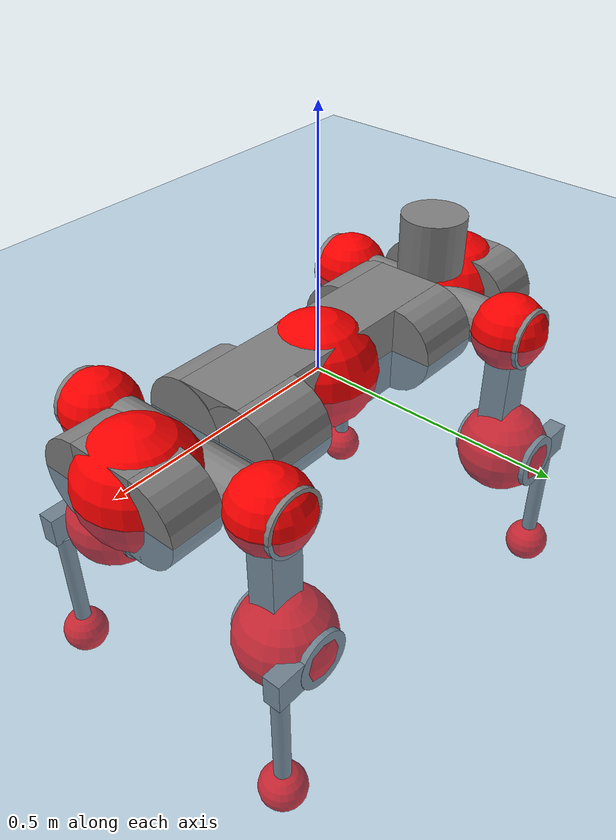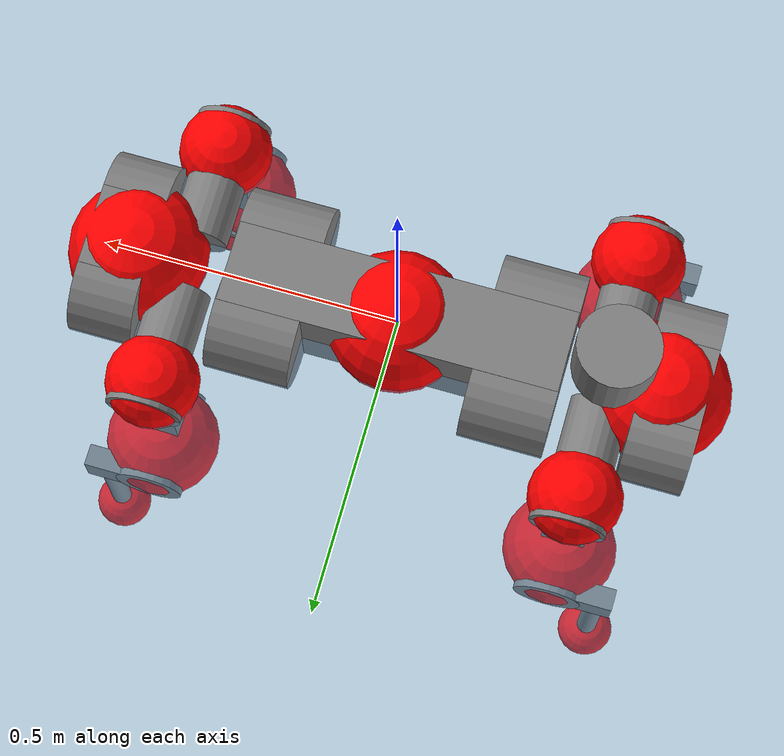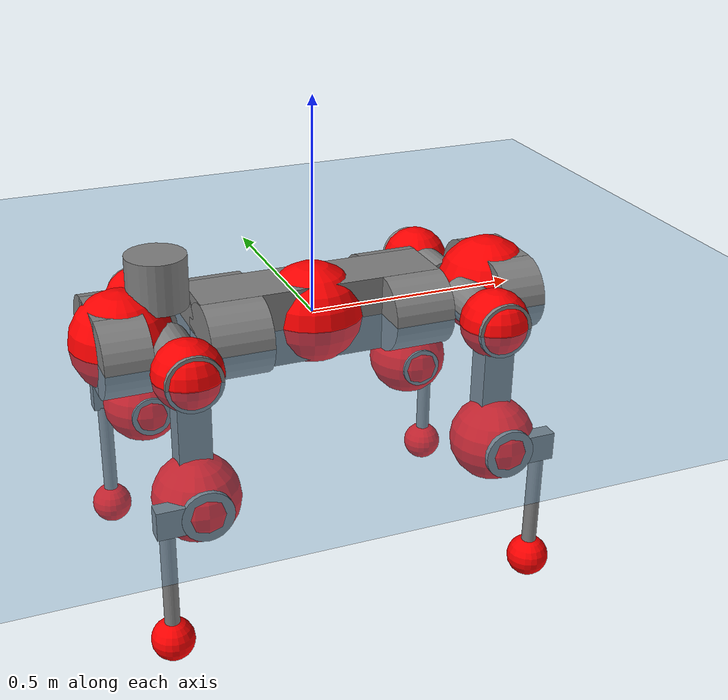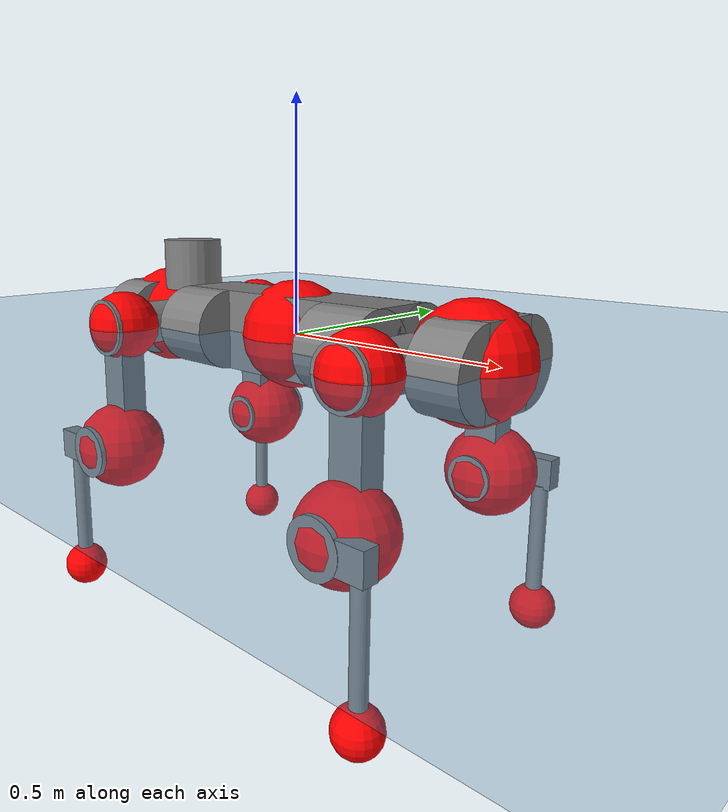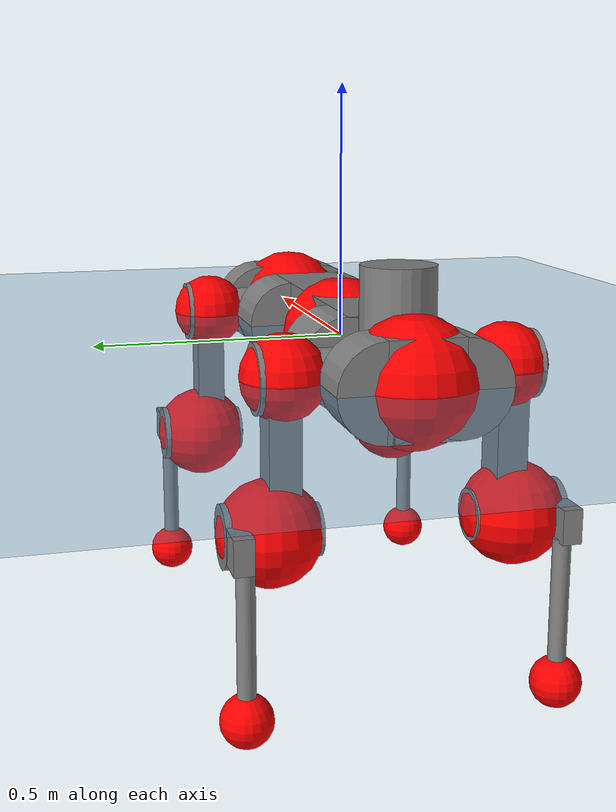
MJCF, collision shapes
<mujoco model="anymal_c">
  <compiler angle="radian" assetdir="assets" balanceinertia="true" inertiafromgeom="false"/>

  <option timestep="0.005" density="1.2" viscosity="2e-05"/>

  <size nkey="1"/>

  <visual>
    <quality shadowsize="8192"/>
    <map shadowclip="0.5"/>
  </visual>

  <default>
    <default class="/">
      <material specular="0" shininess="0.25"/>
      <geom contype="0" conaffinity="0" group="1" solref="-1000 -80"/>
      <site size="0.01 0.005 0.005" group="5"/>
      <general forcelimited="true" forcerange="-80 80" biastype="affine" gainprm="80" biasprm="0 -80 -2"/>
      <default class="anymal_c">
        <joint armature="0.01" damping="0.01" frictionloss="0.1"/>
        <default class="visual">
          <geom type="mesh" group="2"/>
          <default class="visual_zflip"/>
        </default>
        <default class="collision">
          <geom type="cylinder" group="3"/>
          <default class="foot">
            <geom size="0.03 0 0" type="sphere" condim="6" priority="1" friction="0.8 0.02 0.01" solimp="0.015 1 0.03"/>
          </default>
        </default>
      </default>
      <default class="reward_collision_sphere">
        <geom group="5" rgba="1 0 0 1"/>
      </default>
    </default>
  </default>

  <asset>
    <texture type="skybox" colorspace="auto" name="//unnamed_texture_0" builtin="gradient" rgb1="0.95 0.95 0.95" rgb2="0.95 0.95 0.95" width="100" height="600"/>
    <texture type="2d" colorspace="auto" name="texplane" builtin="checker" rgb1="0.345 0.575 0.748" rgb2="0.345 0.575 0.748" markrgb="1 1 1" width="512" height="512"/>
    <texture type="2d" colorspace="linear" name="base" file="base.png"/>
    <texture type="2d" colorspace="linear" name="top_shell" file="top_shell.png"/>
    <texture type="2d" colorspace="linear" name="bottom_shell" file="bottom_shell.png"/>
    <texture type="2d" colorspace="linear" name="remote" file="remote.png"/>
    <texture type="2d" colorspace="linear" name="hatch" file="hatch.png"/>
    <texture type="2d" colorspace="linear" name="handle" file="handle.png"/>
    <texture type="2d" colorspace="linear" name="face" file="face.png"/>
    <texture type="2d" colorspace="linear" name="battery" file="battery.png"/>
    <texture type="2d" colorspace="linear" name="lidar_cage" file="lidar_cage.png"/>
    <texture type="2d" colorspace="linear" name="depth_camera" file="depth_camera.png"/>
    <texture type="2d" colorspace="linear" name="wide_angle_camera" file="wide_angle_camera.png"/>
    <texture type="2d" colorspace="linear" name="lidar" file="lidar.png"/>
    <texture type="2d" colorspace="linear" name="drive" file="drive.png"/>
    <texture type="2d" colorspace="linear" name="hip_l" file="hip_l.png"/>
    <texture type="2d" colorspace="linear" name="shank_l" file="shank_l.png"/>
    <texture type="2d" colorspace="linear" name="foot" file="foot.png"/>
    <texture type="2d" colorspace="linear" name="thigh" file="thigh.png"/>
    <texture type="2d" colorspace="linear" name="shank_r" file="shank_r.png"/>
    <texture type="2d" colorspace="linear" name="hip_r" file="hip_r.png"/>
    <material name="MatPlane" class="/" texture="texplane" texuniform="true" texrepeat="2 2" specular="0.9" shininess="0.5"/>
    <material name="black_plastic" class="/" rgba="0.007 0.007 0.007 1"/>
    <material name="green" class="/" rgba="0.052 0.178 0.033 1"/>
    <material name="red" class="/" rgba="0.178 0.006 0.005 1"/>
    <material name="yellow" class="/" rgba="0.178 0.119 0.006 1"/>
    <material name="lwl" class="/" rgba="0.8 0.8 0.8 1"/>
    <material name="base" class="/" texture="base"/>
    <material name="top_shell" class="/" texture="top_shell"/>
    <material name="bottom_shell" class="/" texture="bottom_shell"/>
    <material name="hip_l" class="/" texture="hip_l"/>
    <material name="thigh" class="/" texture="thigh"/>
    <material name="shank_l" class="/" texture="shank_l"/>
    <material name="foot" class="/" texture="foot"/>
    <material name="hip_r" class="/" texture="hip_r"/>
    <material name="shank" class="/" texture="shank_r"/>
    <material name="hatch" class="/" texture="hatch"/>
    <material name="remote" class="/" texture="remote"/>
    <material name="handle" class="/" texture="handle"/>
    <material name="face" class="/" texture="face"/>
    <material name="depth_camera" class="/" texture="depth_camera"/>
    <material name="wide_angle_camera" class="/" texture="wide_angle_camera"/>
    <material name="battery" class="/" texture="battery"/>
    <material name="lidar_cage" class="/" texture="lidar_cage"/>
    <material name="lidar" class="/" texture="lidar"/>
    <material name="drive" class="/" texture="drive"/>
    <mesh name="base_0" class="/" file="base_0.obj"/>
    <mesh name="base_1" class="/" file="base_1.obj"/>
    <mesh name="base_2" class="/" file="base_2.obj"/>
    <mesh name="base_3" class="/" file="base_3.obj"/>
    <mesh name="base_4" class="/" file="base_4.obj"/>
    <mesh name="base_5" class="/" file="base_5.obj"/>
    <mesh name="top_shell" class="/" file="top_shell.obj"/>
    <mesh name="bottom_shell" class="/" file="bottom_shell.obj"/>
    <mesh name="remote" class="/" file="remote.obj"/>
    <mesh name="handle" class="/" file="handle.obj"/>
    <mesh name="face" class="/" file="face.obj"/>
    <mesh name="wide_angle_camera" class="/" file="wide_angle_camera.obj"/>
    <mesh name="depth_camera" class="/" file="depth_camera.obj"/>
    <mesh name="battery" class="/" file="battery.obj"/>
    <mesh name="lidar_cage" class="/" file="lidar_cage.obj"/>
    <mesh name="lidar" class="/" file="lidar.obj"/>
    <mesh name="drive" class="/" file="drive.obj"/>
    <mesh name="hip_l" class="/" file="hip_l.obj"/>
    <mesh name="thigh" class="/" file="thigh.obj"/>
    <mesh name="shank_l" class="/" file="shank_l.obj"/>
    <mesh name="foot" class="/" file="foot.obj"/>
    <mesh name="hip_r" class="/" file="hip_r.obj"/>
    <mesh name="hatch" class="/" file="hatch.obj"/>
    <mesh name="shank_r" class="/" file="shank_r.obj"/>
  </asset>

  <worldbody>
    <geom name="floor" class="/" size="100 100 0.125" type="plane" group="0" material="MatPlane"/>
    <light name="toplight_shadow" class="/" pos="0 0 5" dir="0.0990148 0.0990148 -0.990148" type="directional" ambient="0.04 0.04 0.04" diffuse="0.55 0.55 0.55" specular="0.12 0.12 0.12"/>
    <light name="toplight_fill" class="/" pos="0 0 5" dir="0.0990148 0.0990148 -0.990148" type="directional" castshadow="false" ambient="0.04 0.04 0.04" diffuse="0.3 0.3 0.3" specular="0.08 0.08 0.08"/>
    <body name="trunk" childclass="anymal_c" pos="0.000263677 0.000152022 0.00038303" quat="1 -0.000172613 -0.00013331 -2.80353e-05">
      <inertial pos="0.00211909 -0.000949589 0.0478273" quat="0.500057 0.501461 0.499003 0.499475" mass="17.3566" diaginertia="0.582041 0.52388 0.196861"/>
      <joint name="//unnamed_joint_0" type="free" armature="0" damping="0" frictionloss="0"/>
      <geom name="//unnamed_geom_1" class="visual" material="green" mesh="base_0"/>
      <geom name="//unnamed_geom_2" class="visual" material="yellow" mesh="base_1"/>
      <geom name="//unnamed_geom_3" class="visual" material="red" mesh="base_2"/>
      <geom name="//unnamed_geom_4" class="visual" material="black_plastic" mesh="base_3"/>
      <geom name="//unnamed_geom_5" class="visual" material="lwl" mesh="base_4"/>
      <geom name="//unnamed_geom_6" class="visual" material="base" mesh="base_5"/>
      <geom name="trunk_1" class="collision" size="0.283795 0.0685022 0.0880742" type="box"/>
      <geom name="trunk_2" class="collision" size="0.0880742 0.0709487" pos="0.21418 0.0677322 0" quat="0.707107 0 0.707107 0"/>
      <geom name="trunk_3" class="collision" size="0.0880742 0.0709487" pos="-0.21418 0.0677322 0" quat="0.707107 0 0.707107 0"/>
      <geom name="trunk_4" class="collision" size="0.0880742 0.0709487" pos="0.21418 -0.0677322 0" quat="0.707107 0 0.707107 0"/>
      <geom name="trunk_5" class="collision" size="0.0880742 0.0709487" pos="-0.21418 -0.0677322 0" quat="0.707107 0 0.707107 0"/>
      <geom name="//unnamed_geom_12" class="visual" material="top_shell" mesh="top_shell"/>
      <geom name="//unnamed_geom_13" class="visual" material="bottom_shell" mesh="bottom_shell"/>
      <geom name="//unnamed_geom_14" class="visual" material="remote" mesh="remote"/>
      <geom name="//unnamed_geom_15" class="visual" material="handle" mesh="handle"/>
      <geom name="//unnamed_geom_16" class="visual" pos="0.408174 0 0" quat="1 0 0 0" material="face" mesh="face"/>
      <geom name="trunk_6" class="collision" size="0.0538231 0.0685022 0.0880742" pos="0.462334 0 0" type="box"/>
      <geom name="//unnamed_geom_18" class="collision" size="0.0880742 0.0538231" pos="0.462334 0.0677322 0" quat="0.707107 0 0.707107 0"/>
      <geom name="//unnamed_geom_19" class="collision" size="0.0880742 0.0538231" pos="0.462334 -0.0677322 0" quat="0.707107 0 0.707107 0"/>
      <geom name="//unnamed_geom_20" class="visual" pos="0.454604 0 -0.0287076" quat="0.965926 0 0.258819 0" material="depth_camera" mesh="depth_camera"/>
      <geom name="//unnamed_geom_21" class="visual" pos="0.50517 0 0.0147225" material="wide_angle_camera" mesh="wide_angle_camera"/>
      <geom name="//unnamed_geom_22" class="visual_zflip" pos="-0.408174 0 0" quat="0 0 0 1" material="face" mesh="face"/>
      <geom name="trunk_7" class="collision" size="0.0538231 0.0685022 0.0880742" pos="-0.462334 0 0" quat="0 0 0 1" type="box"/>
      <geom name="//unnamed_geom_24" class="collision" size="0.0880742 0.0538231" pos="-0.462334 -0.0677322 0" quat="0 -0.707107 0 0.707107"/>
      <geom name="//unnamed_geom_25" class="collision" size="0.0880742 0.0538231" pos="-0.462334 0.0677322 0" quat="0 -0.707107 0 0.707107"/>
      <geom name="//unnamed_geom_26" class="visual" pos="-0.454604 0 -0.0287076" quat="0 -0.258819 0 0.965926" material="depth_camera" mesh="depth_camera"/>
      <geom name="//unnamed_geom_27" class="visual_zflip" pos="-0.50517 0 0.0147225" quat="0 0 0 1" material="wide_angle_camera" mesh="wide_angle_camera"/>
      <geom name="//unnamed_geom_28" class="visual" material="battery" mesh="battery"/>
      <geom name="//unnamed_geom_29" class="visual" pos="0 0.073758 0.0285794" quat="0.683013 -0.183013 0.183013 0.683013" material="depth_camera" mesh="depth_camera"/>
      <geom name="//unnamed_geom_30" class="visual" pos="0 -0.073758 0.0285794" quat="0.683013 0.183013 0.183013 -0.683013" material="depth_camera" mesh="depth_camera"/>
      <geom name="//unnamed_geom_31" class="visual" pos="-0.358444 0 0.0722849" quat="1 0 0 0" material="lidar_cage" mesh="lidar_cage"/>
      <geom name="trunk_8" class="collision" size="0.0685022 0.0587161" pos="-0.358444 0 0.131293"/>
      <geom name="//unnamed_geom_33" class="visual" pos="-0.358444 -6.73191e-06 0.139849" quat="0.707107 0 0 -0.707107" material="lidar" mesh="lidar"/>
      <geom name="//unnamed_geom_34" class="visual" pos="0.295323 0.100636 -2.73675e-10" quat="0.258819 0.965926 0 0" material="drive" mesh="drive"/>
      <geom name="//unnamed_geom_35" class="visual" pos="0.295323 -0.100636 2.73675e-10" quat="0.258819 -0.965926 0 0" material="drive" mesh="drive"/>
      <geom name="//unnamed_geom_36" class="visual" pos="-0.295323 0.100636 2.73675e-10" quat="0 0 0.965926 -0.258819" material="drive" mesh="drive"/>
      <geom name="//unnamed_geom_37" class="visual" pos="-0.295323 -0.100636 -2.73675e-10" quat="0 0 -0.965926 -0.258819" material="drive" mesh="drive"/>
      <geom name="//unnamed_geom_38" class="visual" pos="0.11423 0 0.0717931" quat="1 0 0 0" material="hatch" mesh="hatch"/>
      <geom name="//unnamed_geom_39" class="reward_collision_sphere" size="0.117432"/>
      <geom name="//unnamed_geom_40" class="reward_collision_sphere" size="0.117432" pos="0.443132 0 0"/>
      <geom name="//unnamed_geom_41" class="reward_collision_sphere" size="0.117432" pos="-0.443132 0 0"/>
      <site name="imu" pos="0.237007 0.0054442 0.0493248" size="0.00978602"/>
      <camera name="track" pos="0 -1.9352 0" quat="0.707107 0.707107 0 0" mode="trackcom"/>
      <camera name="ego_camera" pos="0.443132 0 -0.0393387" quat="-0.5 -0.5 0.5 0.5"/>
      <body name="LF_HIP" pos="0.296154 0.100611 0.000375475" quat="0.258617 0.96598 -0.000550343 0.000168685">
        <inertial pos="0.0567289 -0.0135619 -0.00816128" quat="-0.126077 0.708649 -0.132724 0.681399" mass="2.582" diaginertia="0.00536383 0.00418574 0.00301683"/>
        <joint name="LF_HAA" pos="0 0 0" axis="0.999997 -0.00174396 0.00170446" stiffness="0.00101242" range="-0.720331 0.47127" armature="0.0104415" damping="0.00212035" frictionloss="0.0958577"/>
        <geom name="//unnamed_geom_42" class="visual" pos="0 -1.60991e-05 2.64426e-06" quat="0.258819 -0.965926 0 0" material="hip_l" mesh="hip_l"/>
        <geom name="//unnamed_geom_43" class="visual" pos="0.0589858 -0.0712538 -0.0412558" quat="0.183013 -0.683013 0.683013 0.183013" material="drive" mesh="drive"/>
        <geom name="//unnamed_geom_44" class="collision" size="0.0489301 0.0685022" pos="0.0589858 -0.0115723 -0.00679084" quat="-0.353553 -0.612372 0.612372 -0.353553"/>
        <body name="LF_THIGH" pos="0.0591133 -0.070158 -0.041444" quat="0.182898 -0.682811 0.683176 0.183272">
          <inertial pos="0.0295364 0.000145439 -0.240621" quat="0.99327 -0.00436015 -0.080113 0.0835323" mass="2.84755" diaginertia="0.0276261 0.025328 0.00382407"/>
          <joint name="LF_HFE" pos="0 0 0" axis="0.999979 -0.00335022 0.00548314" range="-3.13809 3.1461" armature="0.010011" damping="0.0119685" frictionloss="0.0942106"/>
          <geom name="//unnamed_geom_45" class="visual" pos="0.00034092 5.37211e-07 0" quat="0.707107 0 0 -0.707107" material="thigh" mesh="thigh"/>
          <geom name="//unnamed_geom_46" class="collision" size="0.0636091 0.0391441" pos="0.0393895 0 0" quat="0.5 0.5 -0.5 -0.5"/>
          <geom name="//unnamed_geom_47" class="collision" size="0.0366976 0.0293581 0.13829" pos="0.0295421 0 -0.138978" quat="0.707107 0 0 -0.707107" type="box"/>
          <geom name="//unnamed_geom_48" class="visual" pos="0.0987692 0 -0.280288" quat="1 0 0 0" material="drive" mesh="drive"/>
          <geom name="//unnamed_geom_49" class="collision" size="0.0489301 0.0685022" pos="0.0298375 0 -0.280288" quat="0.707107 0 0.707107 0"/>
          <geom name="//unnamed_geom_50" class="reward_collision_sphere" size="0.0782882" pos="0.0246184 0 0"/>
          <body name="LF_SHANK" pos="0.0987666 -0.000629449 -0.281779" quat="1 5.16039e-05 -0.000121914 -0.000132065">
            <inertial pos="0.00516523 -0.0592283 -0.0794313" quat="0.992907 -0.116212 -0.000841502 -0.0251135" mass="0.559701" diaginertia="0.00951511 0.00782814 0.00103887"/>
            <joint name="LF_KFE" pos="0 0 0" axis="1 0.000233214 0.000137454" range="-3.13093 3.12432" armature="0.00929111" damping="0.00400016" frictionloss="0.094616"/>
            <geom name="//unnamed_geom_51" class="visual" pos="0.000111167 0.000592747 0" quat="0.707107 0 0 -0.707107" material="shank_l" mesh="shank_l"/>
            <geom name="LF_kfe_act" class="collision" size="0.0587161 0.019572" pos="0.0196947 0 0" quat="0.5 0.5 -0.5 -0.5"/>
            <geom name="//unnamed_geom_53" class="collision" size="0.0562687 0.0330278 0.0185934" pos="0.0196947 -0.0556362 0" quat="0.5 0.5 -0.5 -0.5" type="box"/>
            <geom name="//unnamed_geom_54" class="visual" pos="0.0128508 -0.0849096 -0.332382" quat="0.382683 0 0 -0.92388" material="foot" mesh="foot"/>
            <geom name="LF_calf" class="collision" size="0.0171255 0.13823" pos="0.0128508 -0.0851006 -0.166191" quat="0.707107 0 0 -0.707107"/>
            <geom name="LF_foot" class="foot" size="0.0323145" pos="0.0128508 -0.0851006 -0.310254" quat="0.707107 0 0 -0.707107"/>
            <geom name="//unnamed_geom_57" class="reward_collision_sphere" size="0.0978602" pos="-0.0492369 0 0"/>
            <geom name="//unnamed_geom_58" class="reward_collision_sphere" size="0.0489301" pos="0.0128508 -0.0851006 -0.310254"/>
            <site name="LF_foot" class="foot" pos="0.0128508 -0.0851006 -0.310254" quat="0.707107 0 0 -0.707107" size="0.00978602"/>
          </body>
        </body>
      </body>
      <body name="RF_HIP" pos="0.296553 -0.100856 0.00121538" quat="0.258814 -0.965927 4.58032e-05 4.32698e-05">
        <inertial pos="0.0566341 0.0147172 -0.00800702" quat="0.135151 0.678877 0.128046 0.710256" mass="2.58472" diaginertia="0.00544122 0.0040916 0.00300193"/>
        <joint name="RF_HAA" pos="0 0 0" axis="0.999998 -0.00211328 0.000192781" stiffness="0.000908745" range="-0.513134 0.731258" armature="0.00946986" damping="0.00974066" frictionloss="0.0938269"/>
        <geom name="//unnamed_geom_59" class="visual" pos="0 1.60989e-05 2.64425e-06" quat="0.258819 0.965926 0 0" material="hip_r" mesh="hip_r"/>
        <geom name="//unnamed_geom_60" class="visual" pos="0.0589858 0.0712538 -0.0412558" quat="0.183013 0.683013 0.683013 -0.183013" material="drive" mesh="drive"/>
        <geom name="//unnamed_geom_61" class="collision" size="0.0489301 0.0685022" pos="0.0589858 0.0115723 -0.00679084" quat="-0.353553 0.612372 0.612372 0.353553"/>
        <body name="RF_THIGH" pos="0.0601854 0.0714442 -0.040864" quat="0.182953 0.683117 0.682954 -0.182902">
          <inertial pos="0.0304252 0.000459099 -0.241811" quat="0.993064 -0.00408873 -0.0778577 0.0880057" mass="2.83272" diaginertia="0.0281115 0.0251396 0.00380171"/>
          <joint name="RF_HFE" pos="0 0 0" axis="0.999999 0.000310426 0.00115468" stiffness="0.00529647" range="-3.11114 3.1289" armature="0.00977621" damping="0.00674404" frictionloss="0.107129"/>
          <geom name="//unnamed_geom_62" class="visual" pos="0.00034092 5.37211e-07 0" quat="0.707107 0 0 -0.707107" material="thigh" mesh="thigh"/>
          <geom name="//unnamed_geom_63" class="collision" size="0.0636091 0.0391441" pos="0.0393895 0 0" quat="0.5 0.5 0.5 0.5"/>
          <geom name="//unnamed_geom_64" class="collision" size="0.0366976 0.0293581 0.13829" pos="0.0295421 0 -0.138978" quat="0.707107 0 0 0.707107" type="box"/>
          <geom name="//unnamed_geom_65" class="visual" pos="0.0987692 0 -0.280288" quat="1 0 0 0" material="drive" mesh="drive"/>
          <geom name="//unnamed_geom_66" class="collision" size="0.0489301 0.0685022" pos="0.0298375 0 -0.280288" quat="0.707107 0 0.707107 0"/>
          <geom name="//unnamed_geom_67" class="reward_collision_sphere" size="0.0782882" pos="0.0246184 0 0"/>
          <body name="RF_SHANK" pos="0.099319 -0.000959093 -0.281127" quat="1 -1.38044e-05 -1.62509e-06 3.98899e-06">
            <inertial pos="0.00539104 0.0594668 -0.0779561" quat="0.993028 0.114309 0.000886142 0.0287657" mass="0.548385" diaginertia="0.00924411 0.00782214 0.00102887"/>
            <joint name="RF_KFE" pos="0 0 0" axis="1 -3.41085e-05 -0.000253888" range="-3.11723 3.12276" armature="0.01005" damping="0.0117516" frictionloss="0.0910706"/>
            <geom name="//unnamed_geom_68" class="visual" pos="0.000111166 -0.000592745 0" quat="0.707107 0 0 0.707107" material="shank" mesh="shank_r"/>
            <geom name="RF_kfe_act" class="collision" size="0.0587161 0.019572" pos="0.0196947 0 0" quat="0.5 0.5 0.5 0.5"/>
            <geom name="//unnamed_geom_70" class="collision" size="0.0562687 0.0330278 0.0185934" pos="0.0196947 0.0556362 0" quat="0.5 0.5 0.5 0.5" type="box"/>
            <geom name="//unnamed_geom_71" class="visual" pos="0.0128508 0.0849096 -0.332382" quat="0.382683 0 0 0.92388" material="foot" mesh="foot"/>
            <geom name="RF_calf" class="collision" size="0.0171255 0.13823" pos="0.0128508 0.0851006 -0.166191" quat="0.707107 0 0 0.707107"/>
            <geom name="RF_foot" class="foot" size="0.0276691" pos="0.0128508 0.0851006 -0.310254" quat="0.707107 0 0 0.707107"/>
            <geom name="//unnamed_geom_74" class="reward_collision_sphere" size="0.0978602" pos="-0.0492369 0 0"/>
            <geom name="//unnamed_geom_75" class="reward_collision_sphere" size="0.0489301" pos="0.0128508 0.0851006 -0.310254"/>
            <site name="RF_foot" class="foot" pos="0.0128508 0.0851006 -0.310254" quat="0.707107 0 0 0.707107" size="0.00978602"/>
          </body>
        </body>
      </body>
      <body name="LH_HIP" pos="-0.296058 0.100533 -0.000489532" quat="-2.3444e-05 2.21831e-06 0.965926 -0.258817">
        <inertial pos="0.0549725 0.0155337 -0.00837411" quat="0.132358 0.680904 0.128572 0.708746" mass="2.58474" diaginertia="0.00543302 0.00421913 0.00297819"/>
        <joint name="LH_HAA" pos="0 0 0" axis="0.999997 -0.000190659 0.0024237" stiffness="0.000115576" range="-0.508055 0.685566" armature="0.00930359" damping="0.0137722" frictionloss="0.0992716"/>
        <geom name="//unnamed_geom_76" class="visual" pos="0 1.60989e-05 2.64425e-06" quat="-0.258819 -0.965926 0 0" material="hip_r" mesh="hip_r"/>
        <geom name="//unnamed_geom_77" class="visual" pos="0.0589858 0.0712538 -0.0412558" quat="0.183013 0.683013 0.683013 -0.183013" material="drive" mesh="drive"/>
        <geom name="//unnamed_geom_78" class="collision" size="0.0489301 0.0685022" pos="0.0589858 0.0115723 -0.00679084" quat="-0.353553 0.612372 0.612372 0.353553"/>
        <body name="LH_THIGH" pos="0.0587363 0.0689683 -0.0408538" quat="0.183146 0.682999 0.683007 -0.182952">
          <inertial pos="0.0303966 0.000136248 -0.241975" quat="0.99268 -0.00507149 -0.0809562 0.0894829" mass="2.87984" diaginertia="0.0279741 0.0255888 0.0038295"/>
          <joint name="LH_HFE" pos="0 0 0" axis="0.99999 -0.00163622 -0.00416993" range="-3.13929 3.13117" armature="0.0102523" damping="0.01359" frictionloss="0.0944727"/>
          <geom name="//unnamed_geom_79" class="visual" pos="0.00034092 5.37211e-07 0" quat="0.707107 0 0 -0.707107" material="thigh" mesh="thigh"/>
          <geom name="//unnamed_geom_80" class="collision" size="0.0636091 0.0391441" pos="0.0393895 0 0" quat="0.5 0.5 -0.5 -0.5"/>
          <geom name="//unnamed_geom_81" class="collision" size="0.0366976 0.0293581 0.13829" pos="0.0295421 0 -0.138978" quat="0.707107 0 0 -0.707107" type="box"/>
          <geom name="//unnamed_geom_82" class="visual" pos="0.0987692 0 -0.280288" quat="1 0 0 0" material="drive" mesh="drive"/>
          <geom name="//unnamed_geom_83" class="collision" size="0.0489301 0.0685022" pos="0.0298375 0 -0.280288" quat="0.707107 0 0.707107 0"/>
          <geom name="//unnamed_geom_84" class="reward_collision_sphere" size="0.0782882" pos="0.0246184 0 0"/>
          <body name="LH_SHANK" pos="0.0999355 -0.000519607 -0.280122" quat="1 0.000118421 -0.000309363 -7.38693e-05">
            <inertial pos="0.00535805 0.0591726 -0.0792521" quat="0.991954 0.122869 -0.00487567 0.0301194" mass="0.552463" diaginertia="0.00943438 0.00790486 0.00101148"/>
            <joint name="LH_KFE" pos="0 0 0" axis="0.999997 -0.00140245 -0.00201049" range="-3.14788 3.13858" armature="0.00978699" damping="0.0103823" frictionloss="0.0950614"/>
            <geom name="//unnamed_geom_85" class="visual" pos="0.000111166 -0.000592745 0" quat="-0.707107 0 0 -0.707107" material="shank" mesh="shank_r"/>
            <geom name="LH_kfe_act" class="collision" size="0.0587161 0.019572" pos="0.0196947 0 0" quat="0.5 0.5 -0.5 -0.5"/>
            <geom name="//unnamed_geom_87" class="collision" size="0.0562687 0.0330278 0.0185934" pos="0.0196947 0.0556362 0" quat="0.5 0.5 -0.5 -0.5" type="box"/>
            <geom name="//unnamed_geom_88" class="visual" pos="0.0128508 0.0849096 -0.332382" quat="-0.382683 0 0 -0.92388" material="foot" mesh="foot"/>
            <geom name="LH_calf" class="collision" size="0.0171255 0.13823" pos="0.0128508 0.0851006 -0.166191" quat="0.707107 0 0 -0.707107"/>
            <geom name="LH_foot" class="foot" size="0.0326685" pos="0.0128508 0.0851006 -0.310254" quat="0.707107 0 0 -0.707107"/>
            <geom name="//unnamed_geom_91" class="reward_collision_sphere" size="0.0978602" pos="-0.0492369 0 0"/>
            <geom name="//unnamed_geom_92" class="reward_collision_sphere" size="0.0489301" pos="0.0128508 0.0851006 -0.310254"/>
            <site name="LH_foot" class="foot" pos="0.0128508 0.0851006 -0.310254" quat="0.707107 0 0 -0.707107" size="0.00978602"/>
          </body>
        </body>
      </body>
      <body name="RH_HIP" pos="-0.295472 -0.101988 0.000812089" quat="0.000130691 0.000210419 -0.965928 -0.25881">
        <inertial pos="0.0547074 -0.0148334 -0.00777683" quat="-0.12768 0.709581 -0.136298 0.679423" mass="2.63469" diaginertia="0.0055039 0.00422698 0.00301014"/>
        <joint name="RH_HAA" pos="0 0 0" axis="0.999999 -0.000850059 0.000943061" stiffness="0.00199218" range="-0.733823 0.523713" armature="0.00963073" damping="0.0116283" frictionloss="0.0985221"/>
        <geom name="//unnamed_geom_93" class="visual" pos="0 -1.60991e-05 2.64426e-06" quat="-0.258819 0.965926 0 0" material="hip_l" mesh="hip_l"/>
        <geom name="//unnamed_geom_94" class="visual" pos="0.0589858 -0.0712538 -0.0412558" quat="-0.183013 0.683013 -0.683013 -0.183013" material="drive" mesh="drive"/>
        <geom name="//unnamed_geom_95" class="collision" size="0.0489301 0.0685022" pos="0.0589858 -0.0115723 -0.00679084" quat="0.353553 0.612372 -0.612372 0.353553"/>
        <body name="RH_THIGH" pos="0.0590267 -0.0694534 -0.0404095" quat="-0.182979 0.68304 -0.683003 -0.182983">
          <inertial pos="0.0302717 -6.16974e-05 -0.240951" quat="0.993123 -0.00495293 -0.0808056 0.0845683" mass="2.76258" diaginertia="0.0272012 0.0246927 0.00377368"/>
          <joint name="RH_HFE" pos="0 0 0" axis="0.999998 0.00108594 0.00162856" range="-3.14122 3.14754" armature="0.0102156" damping="0.0115499" frictionloss="0.0988642"/>
          <geom name="//unnamed_geom_96" class="visual" pos="0.00034092 5.37211e-07 0" quat="0.707107 0 0 -0.707107" material="thigh" mesh="thigh"/>
          <geom name="//unnamed_geom_97" class="collision" size="0.0636091 0.0391441" pos="0.0393895 0 0" quat="0.5 0.5 0.5 0.5"/>
          <geom name="//unnamed_geom_98" class="collision" size="0.0366976 0.0293581 0.13829" pos="0.0295421 0 -0.138978" quat="0.707107 0 0 0.707107" type="box"/>
          <geom name="//unnamed_geom_99" class="visual" pos="0.0987692 0 -0.280288" quat="1 0 0 0" material="drive" mesh="drive"/>
          <geom name="//unnamed_geom_100" class="collision" size="0.0489301 0.0685022" pos="0.0298375 0 -0.280288" quat="0.707107 0 0.707107 0"/>
          <geom name="//unnamed_geom_101" class="reward_collision_sphere" size="0.0782882" pos="0.0246184 0 0"/>
          <body name="RH_SHANK" pos="0.0975487 -3.85756e-05 -0.280957" quat="1 0.000406651 -4.00589e-05 0.00033377">
            <inertial pos="0.00627466 -0.0590942 -0.0794665" quat="0.992842 -0.116356 0.000699705 -0.0269206" mass="0.555612" diaginertia="0.00953072 0.00788443 0.00102764"/>
            <joint name="RH_KFE" pos="0 0 0" axis="0.999983 0.00183367 0.00559331" range="-3.13895 3.14616" armature="0.00910161" damping="0.00529991" frictionloss="0.0981581"/>
            <geom name="//unnamed_geom_102" class="visual" pos="0.000111167 0.000592747 0" quat="0.707107 0 0 -0.707107" material="shank_l" mesh="shank_l"/>
            <geom name="RH_kfe_act" class="collision" size="0.0587161 0.019572" pos="0.0196947 0 0" quat="0.5 0.5 0.5 0.5"/>
            <geom name="//unnamed_geom_104" class="collision" size="0.0562687 0.0330278 0.0185934" pos="0.0196947 -0.0556362 0" quat="0.5 0.5 0.5 0.5" type="box"/>
            <geom name="//unnamed_geom_105" class="visual" pos="0.0128508 -0.0849096 -0.332382" quat="0.382683 0 0 -0.92388" material="foot" mesh="foot"/>
            <geom name="RH_calf" class="collision" size="0.0171255 0.13823" pos="0.0128508 -0.0851006 -0.166191" quat="0.707107 0 0 0.707107"/>
            <geom name="RH_foot" class="foot" size="0.0266204" pos="0.0128508 -0.0851006 -0.310254" quat="0.707107 0 0 0.707107"/>
            <geom name="//unnamed_geom_108" class="reward_collision_sphere" size="0.0978602" pos="-0.0492369 0 0"/>
            <geom name="//unnamed_geom_109" class="reward_collision_sphere" size="0.0489301" pos="0.0128508 -0.0851006 -0.310254"/>
            <site name="RH_foot" class="foot" pos="0.0128508 -0.0851006 -0.310254" quat="0.707107 0 0 0.707107" size="0.00978602"/>
          </body>
        </body>
      </body>
    </body>
  </worldbody>

  <contact>
    <pair class="/" geom1="floor" geom2="LF_foot" name="//unnamed_contact_0"/>
    <pair class="/" geom1="floor" geom2="RF_foot" name="//unnamed_contact_1"/>
    <pair class="/" geom1="floor" geom2="LH_foot" name="//unnamed_contact_2"/>
    <pair class="/" geom1="floor" geom2="RH_foot" name="//unnamed_contact_3"/>
  </contact>

  <actuator>
    <general name="LF_HAA" class="/" joint="LF_HAA" forcerange="-77.3404 77.3404" gainprm="83.36" biasprm="0 -83.36 -1.94595"/>
    <general name="LF_HFE" class="/" joint="LF_HFE" forcerange="-81.1312 81.1312" gainprm="83.36" biasprm="0 -83.36 -1.94595"/>
    <general name="LF_KFE" class="/" joint="LF_KFE" forcerange="-77.5831 77.5831" gainprm="83.36" biasprm="0 -83.36 -1.94595"/>
    <general name="RF_HAA" class="/" joint="RF_HAA" forcerange="-80.9788 80.9788" gainprm="83.36" biasprm="0 -83.36 -1.94595"/>
    <general name="RF_HFE" class="/" joint="RF_HFE" forcerange="-76.396 76.396" gainprm="83.36" biasprm="0 -83.36 -1.94595"/>
    <general name="RF_KFE" class="/" joint="RF_KFE" forcerange="-77.0242 77.0242" gainprm="83.36" biasprm="0 -83.36 -1.94595"/>
    <general name="LH_HAA" class="/" joint="LH_HAA" forcerange="-78.8587 78.8587" gainprm="83.36" biasprm="0 -83.36 -1.94595"/>
    <general name="LH_HFE" class="/" joint="LH_HFE" forcerange="-77.2919 77.2919" gainprm="83.36" biasprm="0 -83.36 -1.94595"/>
    <general name="LH_KFE" class="/" joint="LH_KFE" forcerange="-77.8501 77.8501" gainprm="83.36" biasprm="0 -83.36 -1.94595"/>
    <general name="RH_HAA" class="/" joint="RH_HAA" forcerange="-79.6817 79.6817" gainprm="83.36" biasprm="0 -83.36 -1.94595"/>
    <general name="RH_HFE" class="/" joint="RH_HFE" forcerange="-74.8501 74.8501" gainprm="83.36" biasprm="0 -83.36 -1.94595"/>
    <general name="RH_KFE" class="/" joint="RH_KFE" forcerange="-79.5536 79.5536" gainprm="83.36" biasprm="0 -83.36 -1.94595"/>
  </actuator>

  <sensor>
    <gyro site="imu" name="imu_angular_velocity"/>
    <velocimeter site="imu" name="imu_linear_velocity"/>
    <framelinvel objtype="site" objname="LF_foot" name="LF_foot_global_linear_velocity"/>
    <framelinvel objtype="site" objname="RF_foot" name="RF_foot_global_linear_velocity"/>
    <framelinvel objtype="site" objname="LH_foot" name="LH_foot_global_linear_velocity"/>
    <framelinvel objtype="site" objname="RH_foot" name="RH_foot_global_linear_velocity"/>
  </sensor>

  <keyframe>
    <key name="home" qpos="0 0 0.55 1 0 0 0 0 0.4 -0.8 0 -0.4 0.8 0 -0.4 0.8 0 0.4 -0.8"/>
  </keyframe>
</mujoco>
